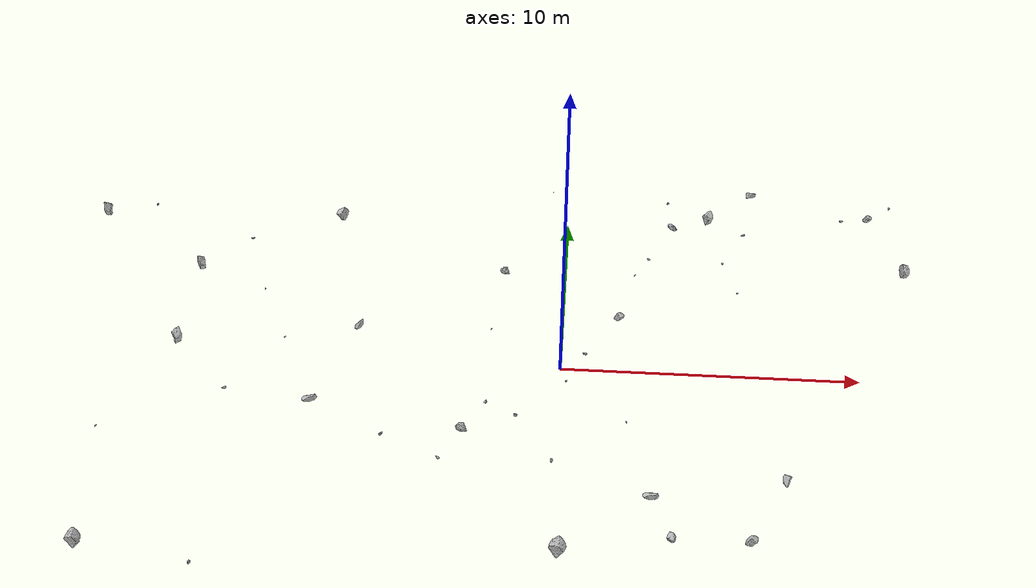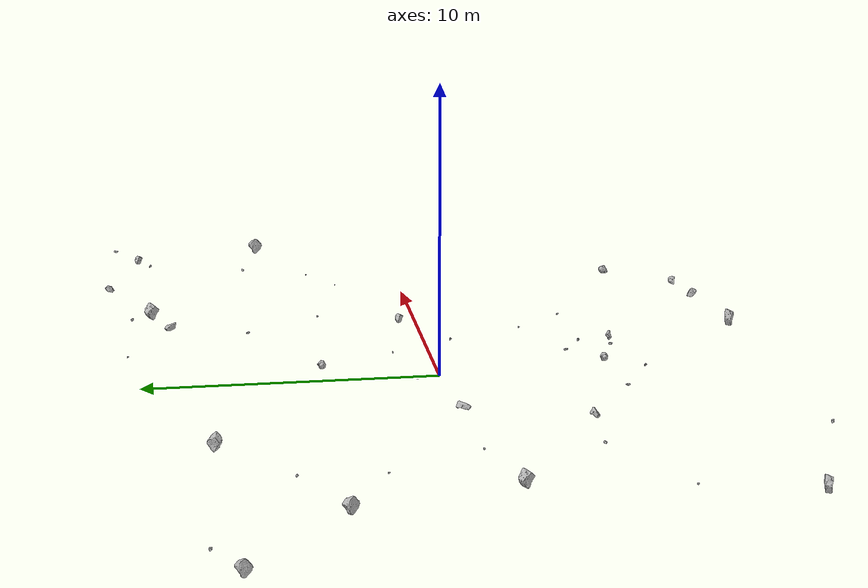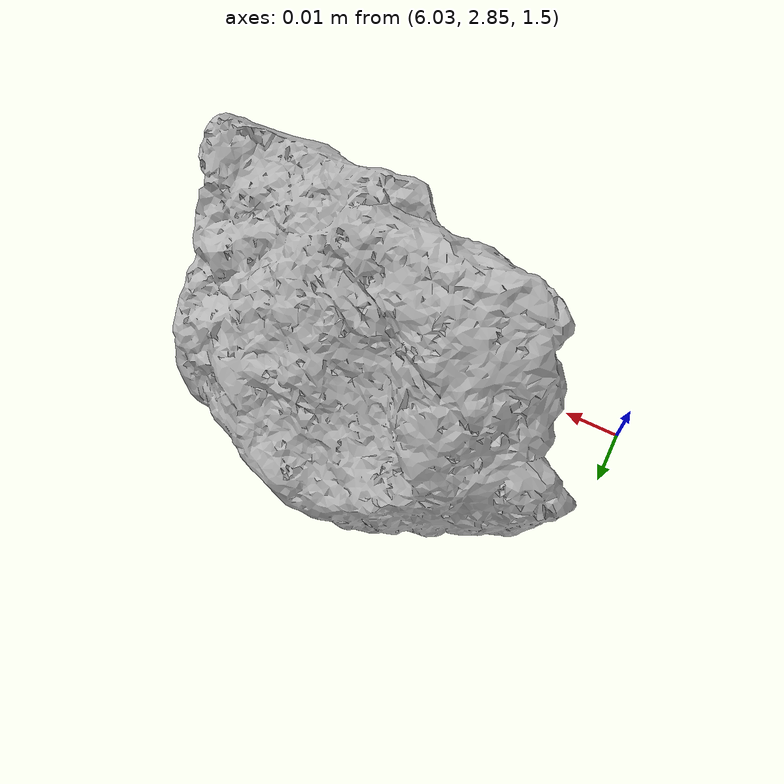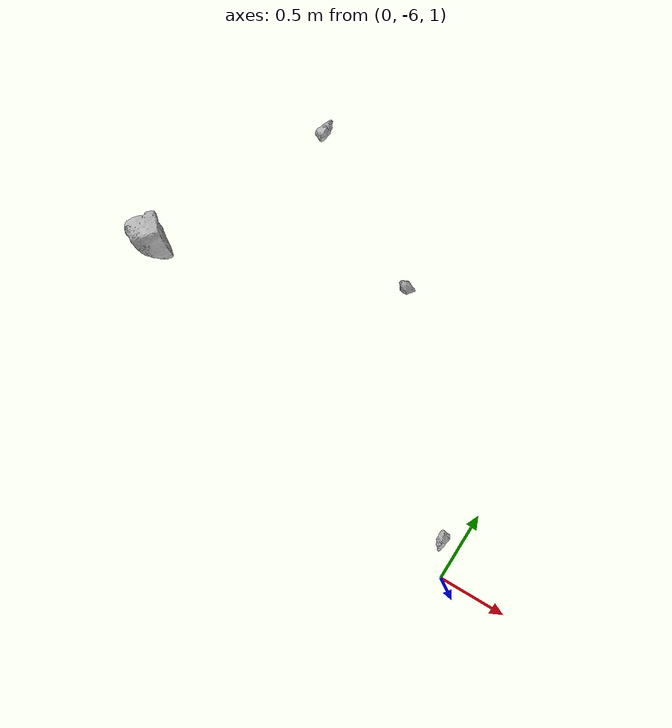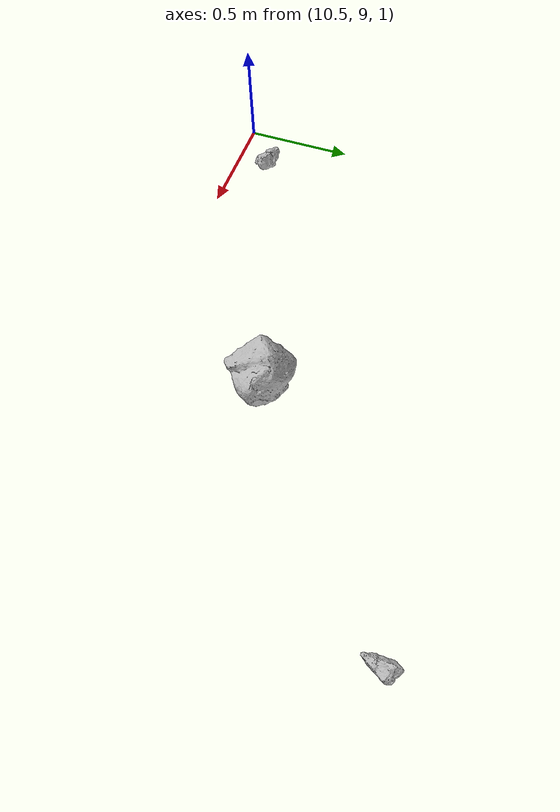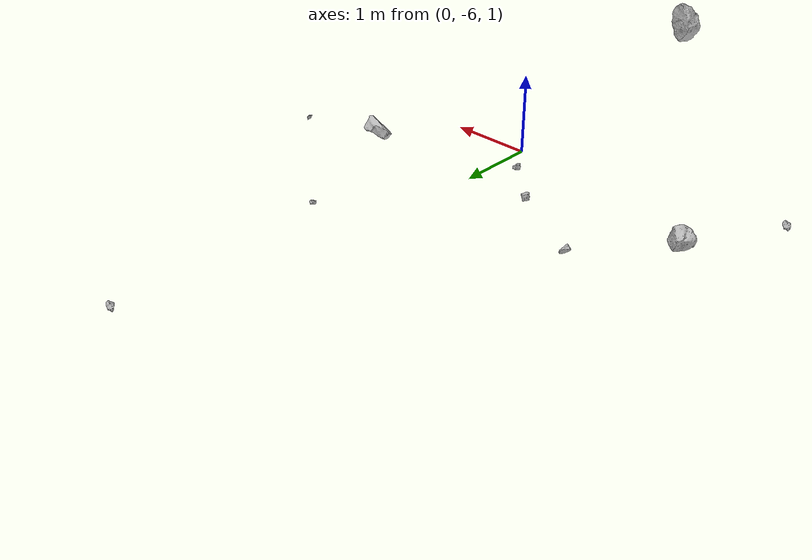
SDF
<sdf version="1.7">
 <world name="marsyard">
  <gravity>0 0 -9.81</gravity>
  <physics name="dart_physics" type="ignored">
   <max_step_size>0.003</max_step_size>
   <real_time_update_rate>333</real_time_update_rate>
   <real_time_factor>1.0</real_time_factor>
  </physics>
  <plugin filename="ignition-gazebo-physics-system" name="ignition::gazebo::systems::Physics"/>
  <plugin filename="ignition-gazebo-user-commands-system" name="ignition::gazebo::systems::UserCommands"/>
  <plugin filename="ignition-gazebo-scene-broadcaster-system" name="ignition::gazebo::systems::SceneBroadcaster"/>
  <plugin filename="ignition-gazebo-contact-system" name="ignition::gazebo::systems::Contact"/>
  <plugin filename="ignition-gazebo-sensors-system" name="ignition::gazebo::systems::Sensors">
   <render_engine>ogre2</render_engine>
  </plugin>
  <plugin filename="ignition-gazebo-imu-system" name="ignition::gazebo::systems::Imu"/>
  <plugin filename="ignition-gazebo-magnetometer-system" name="ignition::gazebo::systems::Magnetometer"/>
  <scene>
   <ambient>0.95 0.95 0.95 1</ambient>
   <background>0.70 0.70 0.70 1</background>
   <shadows>false</shadows>
  </scene>
  <light type="directional" name="sun">
   <cast_shadows>false</cast_shadows>
   <pose>0 0 30 0 0 0</pose>
   <diffuse>1 1 1 1</diffuse>
   <specular>0.15 0.15 0.15 1</specular>
   <direction>-0.35 0.1 -0.93</direction>
  </light>
  <model name="Rock_1">
   <static>true</static>
   <pose>-12.0554 5.9118 1.2147 0.0000 0.0000 2.9131</pose>
   <link name="link">
    <visual name="visual">
     <geometry><mesh><uri>package://rock_generator/rocks_ws/rock_6/meshes/rock_6.obj</uri></mesh></geometry>
    </visual>
   </link>
  </model>
  <model name="Rock_3">
   <static>true</static>
   <pose>0.2205 -2.7039 1.5269 0.0000 0.0000 -2.5811</pose>
   <link name="link">
    <visual name="visual">
     <geometry><mesh><uri>package://rock_generator/rocks_ws/rock_5/meshes/rock_5.obj</uri></mesh></geometry>
    </visual>
    <collision name="collision">
     <geometry><mesh><uri>package://rock_generator/rocks_ws/rock_5/meshes/rock_5.obj</uri></mesh></geometry>
    </collision>
   </link>
  </model>
  <model name="Rock_5">
   <static>true</static>
   <pose>6.5245 6.0800 2.0699 0.0000 0.0000 -2.8298</pose>
   <link name="link">
    <visual name="visual">
     <geometry><mesh><uri>package://rock_generator/rocks_ws/rock_6/meshes/rock_6.obj</uri></mesh></geometry>
    </visual>
    <collision name="collision">
     <geometry><mesh><uri>package://rock_generator/rocks_ws/rock_6/meshes/rock_6.obj</uri></mesh></geometry>
    </collision>
   </link>
  </model>
  <model name="Rock_7">
   <static>true</static>
   <pose>10.7859 9.1901 1.1341 0.0000 0.0000 2.7015</pose>
   <link name="link">
    <visual name="visual">
     <geometry><mesh><uri>package://rock_generator/rocks_ws/rock_6/meshes/rock_6.obj</uri></mesh></geometry>
    </visual>
   </link>
  </model>
  <model name="Rock_8">
   <static>true</static>
   <pose>-5.2474 -5.2890 1.1803 0.0000 0.0000 0.9531</pose>
   <link name="link">
    <visual name="visual">
     <geometry><mesh><uri>package://rock_generator/rocks_ws/rock_6/meshes/rock_6.obj</uri></mesh></geometry>
    </visual>
    <collision name="collision">
     <geometry><mesh><uri>package://rock_generator/rocks_ws/rock_6/meshes/rock_6.obj</uri></mesh></geometry>
    </collision>
   </link>
  </model>
  <model name="Rock_9">
   <static>true</static>
   <pose>4.0123 10.0755 1.1846 0.0000 0.0000 -2.3457</pose>
   <link name="link">
    <visual name="visual">
     <geometry><mesh><uri>package://rock_generator/rocks_ws/rock_9/meshes/rock_9.obj</uri></mesh></geometry>
    </visual>
    <collision name="collision">
     <geometry><mesh><uri>package://rock_generator/rocks_ws/rock_9/meshes/rock_9.obj</uri></mesh></geometry>
    </collision>
   </link>
  </model>
  <model name="Rock_11">
   <static>true</static>
   <pose>-12.8759 -0.5489 1.1011 0.0000 0.0000 2.2955</pose>
   <link name="link">
    <visual name="visual">
     <geometry><mesh><uri>package://rock_generator/rocks_ws/rock_1/meshes/rock_1.obj</uri></mesh></geometry>
    </visual>
    <collision name="collision">
     <geometry><mesh><uri>package://rock_generator/rocks_ws/rock_1/meshes/rock_1.obj</uri></mesh></geometry>
    </collision>
   </link>
  </model>
  <model name="Rock_12">
   <static>true</static>
   <pose>-0.1064 -5.7827 0.9058 0.0000 0.0000 -1.4826</pose>
   <link name="link">
    <visual name="visual">
     <geometry><mesh><uri>package://rock_generator/rocks_ws/rock_6/meshes/rock_6.obj</uri></mesh></geometry>
    </visual>
   </link>
  </model>
  <model name="Rock_14">
   <static>true</static>
   <pose>0.7993 -0.4739 1.0173 0.0000 0.0000 2.7855</pose>
   <link name="link">
    <visual name="visual">
     <geometry><mesh><uri>package://rock_generator/rocks_ws/rock_6/meshes/rock_6.obj</uri></mesh></geometry>
    </visual>
    <collision name="collision">
     <geometry><mesh><uri>package://rock_generator/rocks_ws/rock_6/meshes/rock_6.obj</uri></mesh></geometry>
    </collision>
   </link>
  </model>
  <model name="Rock_15">
   <static>true</static>
   <pose>-13.9611 -5.4586 1.0673 0.0000 0.0000 1.1206</pose>
   <link name="link">
    <visual name="visual">
     <geometry><mesh><uri>package://rock_generator/rocks_ws/rock_5/meshes/rock_5.obj</uri></mesh></geometry>
    </visual>
    <collision name="collision">
     <geometry><mesh><uri>package://rock_generator/rocks_ws/rock_5/meshes/rock_5.obj</uri></mesh></geometry>
    </collision>
   </link>
  </model>
  <model name="Rock_17">
   <static>true</static>
   <pose>5.5796 3.9359 2.0867 0.0000 0.0000 2.8467</pose>
   <link name="link">
    <visual name="visual">
     <geometry><mesh><uri>package://rock_generator/rocks_ws/rock_5/meshes/rock_5.obj</uri></mesh></geometry>
    </visual>
    <collision name="collision">
     <geometry><mesh><uri>package://rock_generator/rocks_ws/rock_5/meshes/rock_5.obj</uri></mesh></geometry>
    </collision>
   </link>
  </model>
  <model name="Rock_18">
   <static>true</static>
   <pose>-9.4549 0.0290 0.8003 0.0000 0.0000 0.9625</pose>
   <link name="link">
    <visual name="visual">
     <geometry><mesh><uri>package://rock_generator/rocks_ws/rock_5/meshes/rock_5.obj</uri></mesh></geometry>
    </visual>
    <collision name="collision">
     <geometry><mesh><uri>package://rock_generator/rocks_ws/rock_5/meshes/rock_5.obj</uri></mesh></geometry>
    </collision>
   </link>
  </model>
  <model name="Rock_20">
   <static>true</static>
   <pose>-16.7845 8.6997 1.0177 0.0000 0.0000 -1.5348</pose>
   <link name="link">
    <visual name="visual">
     <geometry><mesh><uri>package://rock_generator/rocks_ws/rock_9/meshes/rock_9.obj</uri></mesh></geometry>
    </visual>
    <collision name="collision">
     <geometry><mesh><uri>package://rock_generator/rocks_ws/rock_9/meshes/rock_9.obj</uri></mesh></geometry>
    </collision>
   </link>
  </model>
  <model name="Rock_21">
   <static>true</static>
   <pose>0.0101 1.5850 0.8954 0.0000 0.0000 0.2278</pose>
   <link name="link">
    <visual name="visual">
     <geometry><mesh><uri>package://rock_generator/rocks_ws/rock_5/meshes/rock_5.obj</uri></mesh></geometry>
    </visual>
   </link>
  </model>
  <model name="Rock_22">
   <static>true</static>
   <pose>-9.3984 -10.7826 1.1193 0.0000 0.0000 -1.8621</pose>
   <link name="link">
    <visual name="visual">
     <geometry><mesh><uri>package://rock_generator/rocks_ws/rock_9/meshes/rock_9.obj</uri></mesh></geometry>
    </visual>
    <collision name="collision">
     <geometry><mesh><uri>package://rock_generator/rocks_ws/rock_9/meshes/rock_9.obj</uri></mesh></geometry>
    </collision>
   </link>
  </model>
  <model name="Rock_24">
   <static>true</static>
   <pose>-10.9172 3.0963 0.7413 0.0000 0.0000 -1.6312</pose>
   <link name="link">
    <visual name="visual">
     <geometry><mesh><uri>package://rock_generator/rocks_ws/rock_5/meshes/rock_5.obj</uri></mesh></geometry>
    </visual>
   </link>
  </model>
  <model name="Rock_25">
   <static>true</static>
   <pose>11.8389 9.5287 1.0536 0.0000 0.0000 -0.8170</pose>
   <link name="link">
    <visual name="visual">
     <geometry><mesh><uri>package://rock_generator/rocks_ws/rock_3/meshes/rock_3.obj</uri></mesh></geometry>
    </visual>
    <collision name="collision">
     <geometry><mesh><uri>package://rock_generator/rocks_ws/rock_3/meshes/rock_3.obj</uri></mesh></geometry>
    </collision>
   </link>
  </model>
  <model name="Rock_28">
   <static>true</static>
   <pose>7.3626 10.8218 1.3365 0.0000 0.0000 -2.6811</pose>
   <link name="link">
    <visual name="visual">
     <geometry><mesh><uri>package://rock_generator/rocks_ws/rock_4/meshes/rock_4.obj</uri></mesh></geometry>
    </visual>
    <collision name="collision">
     <geometry><mesh><uri>package://rock_generator/rocks_ws/rock_4/meshes/rock_4.obj</uri></mesh></geometry>
    </collision>
   </link>
  </model>
  <model name="Rock_29">
   <static>true</static>
   <pose>4.0888 8.7381 0.8231 0.0000 0.0000 -0.9919</pose>
   <link name="link">
    <visual name="visual">
     <geometry><mesh><uri>package://rock_generator/rocks_ws/rock_4/meshes/rock_4.obj</uri></mesh></geometry>
    </visual>
    <collision name="collision">
     <geometry><mesh><uri>package://rock_generator/rocks_ws/rock_4/meshes/rock_4.obj</uri></mesh></geometry>
    </collision>
   </link>
  </model>
  <model name="Rock_30">
   <static>true</static>
   <pose>6.5604 -6.9186 1.5485 0.0000 0.0000 1.0750</pose>
   <link name="link">
    <visual name="visual">
     <geometry><mesh><uri>package://rock_generator/rocks_ws/rock_3/meshes/rock_3.obj</uri></mesh></geometry>
    </visual>
    <collision name="collision">
     <geometry><mesh><uri>package://rock_generator/rocks_ws/rock_3/meshes/rock_3.obj</uri></mesh></geometry>
    </collision>
   </link>
  </model>
  <model name="Rock_31">
   <static>true</static>
   <pose>-8.8662 7.9970 1.2308 0.0000 0.0000 1.0741</pose>
   <link name="link">
    <visual name="visual">
     <geometry><mesh><uri>package://rock_generator/rocks_ws/rock_1/meshes/rock_1.obj</uri></mesh></geometry>
    </visual>
   </link>
  </model>
  <model name="Rock_32">
   <static>true</static>
   <pose>-1.2582 -4.4432 1.4657 0.0000 0.0000 2.7468</pose>
   <link name="link">
    <visual name="visual">
     <geometry><mesh><uri>package://rock_generator/rocks_ws/rock_9/meshes/rock_9.obj</uri></mesh></geometry>
    </visual>
    <collision name="collision">
     <geometry><mesh><uri>package://rock_generator/rocks_ws/rock_9/meshes/rock_9.obj</uri></mesh></geometry>
    </collision>
   </link>
  </model>
  <model name="Rock_34">
   <static>true</static>
   <pose>5.2818 -9.2426 1.3929 0.0000 0.0000 -0.2223</pose>
   <link name="link">
    <visual name="visual">
     <geometry><mesh><uri>package://rock_generator/rocks_ws/rock_3/meshes/rock_3.obj</uri></mesh></geometry>
    </visual>
    <collision name="collision">
     <geometry><mesh><uri>package://rock_generator/rocks_ws/rock_3/meshes/rock_3.obj</uri></mesh></geometry>
    </collision>
   </link>
  </model>
  <model name="Rock_35">
   <static>true</static>
   <pose>0.2607 -9.8223 1.5288 0.0000 0.0000 2.7888</pose>
   <link name="link">
    <visual name="visual">
     <geometry><mesh><uri>package://rock_generator/rocks_ws/rock_1/meshes/rock_1.obj</uri></mesh></geometry>
    </visual>
    <collision name="collision">
     <geometry><mesh><uri>package://rock_generator/rocks_ws/rock_1/meshes/rock_1.obj</uri></mesh></geometry>
    </collision>
   </link>
  </model>
  <model name="Rock_37">
   <static>true</static>
   <pose>-2.2144 -3.8562 1.4568 0.0000 0.0000 1.3990</pose>
   <link name="link">
    <visual name="visual">
     <geometry><mesh><uri>package://rock_generator/rocks_ws/rock_6/meshes/rock_6.obj</uri></mesh></geometry>
    </visual>
    <collision name="collision">
     <geometry><mesh><uri>package://rock_generator/rocks_ws/rock_6/meshes/rock_6.obj</uri></mesh></geometry>
    </collision>
   </link>
  </model>
  <model name="Rock_39">
   <static>true</static>
   <pose>-13.0684 -9.4700 0.4954 0.0000 0.0000 2.9483</pose>
   <link name="link">
    <visual name="visual">
     <geometry><mesh><uri>package://rock_generator/rocks_ws/rock_1/meshes/rock_1.obj</uri></mesh></geometry>
    </visual>
    <collision name="collision">
     <geometry><mesh><uri>package://rock_generator/rocks_ws/rock_1/meshes/rock_1.obj</uri></mesh></geometry>
    </collision>
   </link>
  </model>
  <model name="Rock_40">
   <static>true</static>
   <pose>-7.7410 -3.7761 1.1611 0.0000 0.0000 0.2939</pose>
   <link name="link">
    <visual name="visual">
     <geometry><mesh><uri>package://rock_generator/rocks_ws/rock_4/meshes/rock_4.obj</uri></mesh></geometry>
    </visual>
    <collision name="collision">
     <geometry><mesh><uri>package://rock_generator/rocks_ws/rock_4/meshes/rock_4.obj</uri></mesh></geometry>
    </collision>
   </link>
  </model>
  <model name="Rock_41">
   <static>true</static>
   <pose>-2.4461 1.0846 0.7745 0.0000 0.0000 1.1450</pose>
   <link name="link">
    <visual name="visual">
     <geometry><mesh><uri>package://rock_generator/rocks_ws/rock_5/meshes/rock_5.obj</uri></mesh></geometry>
    </visual>
    <collision name="collision">
     <geometry><mesh><uri>package://rock_generator/rocks_ws/rock_5/meshes/rock_5.obj</uri></mesh></geometry>
    </collision>
   </link>
  </model>
  <model name="Rock_44">
   <static>true</static>
   <pose>-10.5301 -3.4591 1.2064 0.0000 0.0000 -2.8449</pose>
   <link name="link">
    <visual name="visual">
     <geometry><mesh><uri>package://rock_generator/rocks_ws/rock_6/meshes/rock_6.obj</uri></mesh></geometry>
    </visual>
   </link>
  </model>
  <model name="Rock_45">
   <static>true</static>
   <pose>-3.4071 -6.2545 1.2018 0.0000 0.0000 2.3553</pose>
   <link name="link">
    <visual name="visual">
     <geometry><mesh><uri>package://rock_generator/rocks_ws/rock_6/meshes/rock_6.obj</uri></mesh></geometry>
    </visual>
    <collision name="collision">
     <geometry><mesh><uri>package://rock_generator/rocks_ws/rock_6/meshes/rock_6.obj</uri></mesh></geometry>
    </collision>
   </link>
  </model>
  <model name="Rock_46">
   <static>true</static>
   <pose>5.7015 9.4166 0.9517 0.0000 0.0000 2.1867</pose>
   <link name="link">
    <visual name="visual">
     <geometry><mesh><uri>package://rock_generator/rocks_ws/rock_1/meshes/rock_1.obj</uri></mesh></geometry>
    </visual>
   </link>
  </model>
  <model name="Rock_47">
   <static>true</static>
   <pose>6.0703 2.8749 1.5316 0.0000 0.0000 -0.3310</pose>
   <link name="link">
    <visual name="visual">
     <geometry><mesh><uri>package://rock_generator/rocks_ws/rock_5/meshes/rock_5.obj</uri></mesh></geometry>
    </visual>
    <collision name="collision">
     <geometry><mesh><uri>package://rock_generator/rocks_ws/rock_5/meshes/rock_5.obj</uri></mesh></geometry>
    </collision>
   </link>
  </model>
  <model name="Rock_49">
   <static>true</static>
   <pose>1.8594 1.0707 1.4672 0.0000 0.0000 -0.7398</pose>
   <link name="link">
    <visual name="visual">
     <geometry><mesh><uri>package://rock_generator/rocks_ws/rock_3/meshes/rock_3.obj</uri></mesh></geometry>
    </visual>
    <collision name="collision">
     <geometry><mesh><uri>package://rock_generator/rocks_ws/rock_3/meshes/rock_3.obj</uri></mesh></geometry>
    </collision>
   </link>
  </model>
  <model name="Rock_51">
   <static>true</static>
   <pose>12.8929 10.3821 1.1526 0.0000 0.0000 -1.8042</pose>
   <link name="link">
    <visual name="visual">
     <geometry><mesh><uri>package://rock_generator/rocks_ws/rock_6/meshes/rock_6.obj</uri></mesh></geometry>
    </visual>
   </link>
  </model>
  <model name="Rock_53">
   <static>true</static>
   <pose>-0.6492 10.3716 1.3551 0.0000 0.0000 -1.2180</pose>
   <link name="link">
    <visual name="visual">
     <geometry><mesh><uri>package://rock_generator/rocks_ws/rock_5/meshes/rock_5.obj</uri></mesh></geometry>
    </visual>
    <collision name="collision">
     <geometry><mesh><uri>package://rock_generator/rocks_ws/rock_5/meshes/rock_5.obj</uri></mesh></geometry>
    </collision>
   </link>
  </model>
  <model name="Rock_56">
   <static>true</static>
   <pose>2.5059 3.8550 1.4952 0.0000 0.0000 0.6596</pose>
   <link name="link">
    <visual name="visual">
     <geometry><mesh><uri>package://rock_generator/rocks_ws/rock_5/meshes/rock_5.obj</uri></mesh></geometry>
    </visual>
    <collision name="collision">
     <geometry><mesh><uri>package://rock_generator/rocks_ws/rock_5/meshes/rock_5.obj</uri></mesh></geometry>
    </collision>
   </link>
  </model>
  <model name="Rock_57">
   <static>true</static>
   <pose>-18.6893 7.9280 1.1275 0.0000 0.0000 -1.3255</pose>
   <link name="link">
    <visual name="visual">
     <geometry><mesh><uri>package://rock_generator/rocks_ws/rock_1/meshes/rock_1.obj</uri></mesh></geometry>
    </visual>
    <collision name="collision">
     <geometry><mesh><uri>package://rock_generator/rocks_ws/rock_1/meshes/rock_1.obj</uri></mesh></geometry>
    </collision>
   </link>
  </model>
  <model name="Rock_58">
   <static>true</static>
   <pose>12.2227 5.2034 1.2926 0.0000 0.0000 -1.3437</pose>
   <link name="link">
    <visual name="visual">
     <geometry><mesh><uri>package://rock_generator/rocks_ws/rock_1/meshes/rock_1.obj</uri></mesh></geometry>
    </visual>
    <collision name="collision">
     <geometry><mesh><uri>package://rock_generator/rocks_ws/rock_1/meshes/rock_1.obj</uri></mesh></geometry>
    </collision>
   </link>
  </model>
  <model name="Rock_59">
   <static>true</static>
   <pose>2.0812 -4.3785 1.3463 0.0000 0.0000 -1.5852</pose>
   <link name="link">
    <visual name="visual">
     <geometry><mesh><uri>package://rock_generator/rocks_ws/rock_5/meshes/rock_5.obj</uri></mesh></geometry>
    </visual>
    <collision name="collision">
     <geometry><mesh><uri>package://rock_generator/rocks_ws/rock_5/meshes/rock_5.obj</uri></mesh></geometry>
    </collision>
   </link>
  </model>
  <model name="Rock_61">
   <static>true</static>
   <pose>-2.1341 4.2352 1.2598 0.0000 0.0000 2.3330</pose>
   <link name="link">
    <visual name="visual">
     <geometry><mesh><uri>package://rock_generator/rocks_ws/rock_3/meshes/rock_3.obj</uri></mesh></geometry>
    </visual>
    <collision name="collision">
     <geometry><mesh><uri>package://rock_generator/rocks_ws/rock_3/meshes/rock_3.obj</uri></mesh></geometry>
    </collision>
   </link>
  </model>
  <model name="Rock_63">
   <static>true</static>
   <pose>3.1261 6.1748 0.8146 0.0000 0.0000 2.0800</pose>
   <link name="link">
    <visual name="visual">
     <geometry><mesh><uri>package://rock_generator/rocks_ws/rock_6/meshes/rock_6.obj</uri></mesh></geometry>
    </visual>
    <collision name="collision">
     <geometry><mesh><uri>package://rock_generator/rocks_ws/rock_6/meshes/rock_6.obj</uri></mesh></geometry>
    </collision>
   </link>
  </model>
  <model name="Rock_64">
   <static>true</static>
   <pose>-6.8312 0.2222 1.2929 0.0000 0.0000 1.1075</pose>
   <link name="link">
    <visual name="visual">
     <geometry><mesh><uri>package://rock_generator/rocks_ws/rock_4/meshes/rock_4.obj</uri></mesh></geometry>
    </visual>
    <collision name="collision">
     <geometry><mesh><uri>package://rock_generator/rocks_ws/rock_4/meshes/rock_4.obj</uri></mesh></geometry>
    </collision>
   </link>
  </model>
  <model name="Rock_66">
   <static>true</static>
   <pose>2.8105 -6.4195 0.2559 0.0000 0.0000 -0.0848</pose>
   <link name="link">
    <visual name="visual">
     <geometry><mesh><uri>package://rock_generator/rocks_ws/rock_4/meshes/rock_4.obj</uri></mesh></geometry>
    </visual>
    <collision name="collision">
     <geometry><mesh><uri>package://rock_generator/rocks_ws/rock_4/meshes/rock_4.obj</uri></mesh></geometry>
    </collision>
   </link>
  </model>
  <model name="Rock_67">
   <static>true</static>
   <pose>-13.8397 4.4864 0.8499 0.0000 0.0000 -1.0015</pose>
   <link name="link">
    <visual name="visual">
     <geometry><mesh><uri>package://rock_generator/rocks_ws/rock_1/meshes/rock_1.obj</uri></mesh></geometry>
    </visual>
    <collision name="collision">
     <geometry><mesh><uri>package://rock_generator/rocks_ws/rock_1/meshes/rock_1.obj</uri></mesh></geometry>
    </collision>
   </link>
  </model>
  <model name="Rock_68">
   <static>true</static>
   <pose>3.0822 -9.3288 1.5586 0.0000 0.0000 -2.0453</pose>
   <link name="link">
    <visual name="visual">
     <geometry><mesh><uri>package://rock_generator/rocks_ws/rock_3/meshes/rock_3.obj</uri></mesh></geometry>
    </visual>
    <collision name="collision">
     <geometry><mesh><uri>package://rock_generator/rocks_ws/rock_3/meshes/rock_3.obj</uri></mesh></geometry>
    </collision>
   </link>
  </model>
  <model name="Rock_69">
   <static>true</static>
   <pose>-2.7945 -4.9357 1.3260 0.0000 0.0000 2.4466</pose>
   <link name="link">
    <visual name="visual">
     <geometry><mesh><uri>package://rock_generator/rocks_ws/rock_3/meshes/rock_3.obj</uri></mesh></geometry>
    </visual>
    <collision name="collision">
     <geometry><mesh><uri>package://rock_generator/rocks_ws/rock_3/meshes/rock_3.obj</uri></mesh></geometry>
    </collision>
   </link>
  </model>
 </world>
</sdf>
